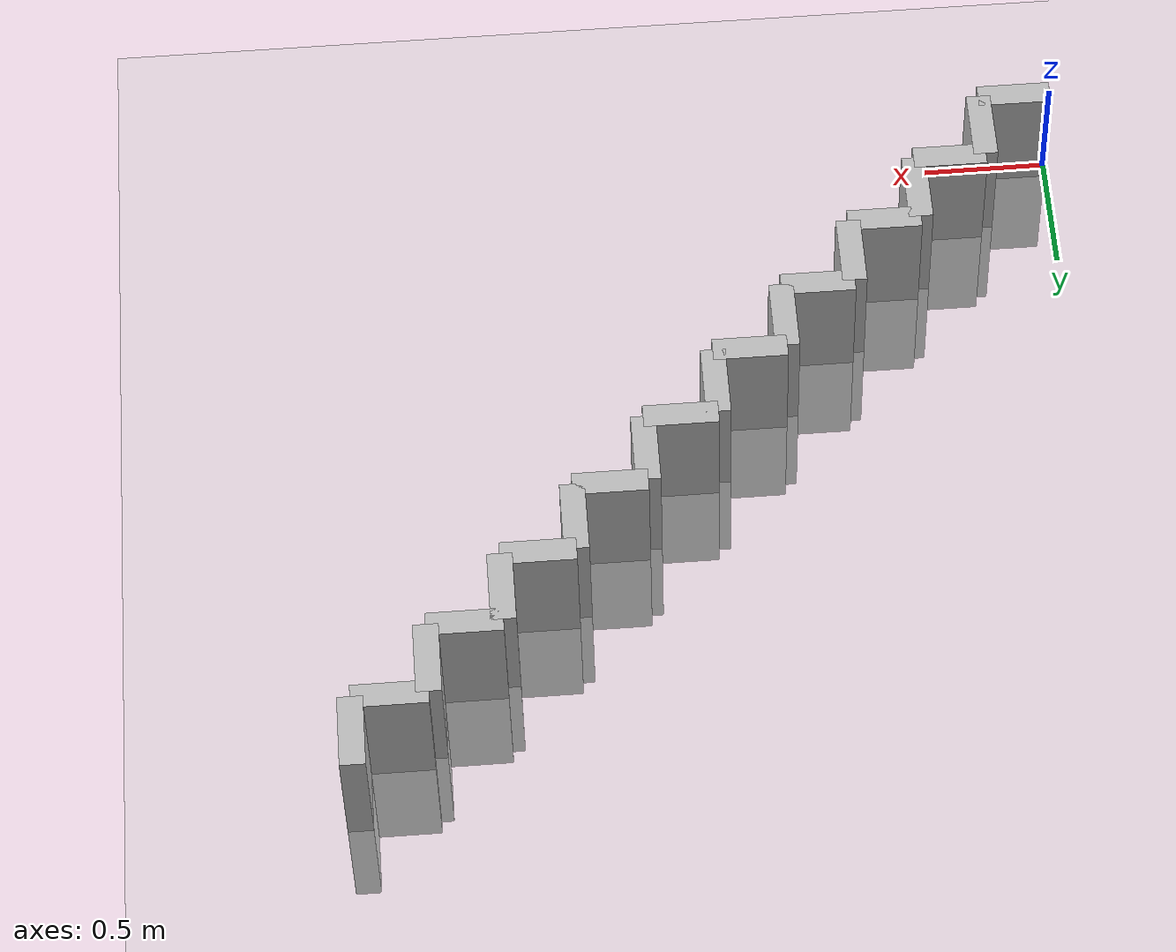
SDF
<?xml version="1.0" ?>
<sdf version="1.6">
  <world name="default">
    <include>
      <uri>model://ground_plane</uri>
    </include>
    <include>
      <uri>model://sun</uri>
    </include>

    <model name="wall_0">
      <static>true</static>
      <link name="link">
        <pose>0.15 0 0 0 0 0</pose>
        <collision name="collision">
          <geometry>
            <box>
              <size>0.3 0.1 1.0</size>
            </box>
          </geometry>
        </collision>
        <visual name="visual">
          <geometry>
            <box>
              <size>0.3 0.1 1.0</size>
            </box>
          </geometry>
        </visual>
      </link>
    </model>

    <model name="wall_1">
      <static>true</static>
      <link name="link">
        <pose>0.3 0.15 0 0 0 1.57</pose>
        <collision name="collision">
          <geometry>
            <box>
              <size>0.3 0.1 1.0</size>
            </box>
          </geometry>
        </collision>
        <visual name="visual">
          <geometry>
            <box>
              <size>0.3 0.1 1.0</size>
            </box>
          </geometry>
        </visual>
      </link>
    </model>

    <model name="wall_2">
      <static>true</static>
      <link name="link">
        <pose>0.44999999999999996 0.3 0 0 0 0</pose>
        <collision name="collision">
          <geometry>
            <box>
              <size>0.3 0.1 1.0</size>
            </box>
          </geometry>
        </collision>
        <visual name="visual">
          <geometry>
            <box>
              <size>0.3 0.1 1.0</size>
            </box>
          </geometry>
        </visual>
      </link>
    </model>

    <model name="wall_3">
      <static>true</static>
      <link name="link">
        <pose>0.6 0.44999999999999996 0 0 0 1.57</pose>
        <collision name="collision">
          <geometry>
            <box>
              <size>0.3 0.1 1.0</size>
            </box>
          </geometry>
        </collision>
        <visual name="visual">
          <geometry>
            <box>
              <size>0.3 0.1 1.0</size>
            </box>
          </geometry>
        </visual>
      </link>
    </model>

    <model name="wall_4">
      <static>true</static>
      <link name="link">
        <pose>0.75 0.6 0 0 0 0</pose>
        <collision name="collision">
          <geometry>
            <box>
              <size>0.3 0.1 1.0</size>
            </box>
          </geometry>
        </collision>
        <visual name="visual">
          <geometry>
            <box>
              <size>0.3 0.1 1.0</size>
            </box>
          </geometry>
        </visual>
      </link>
    </model>

    <model name="wall_5">
      <static>true</static>
      <link name="link">
        <pose>0.9 0.75 0 0 0 1.57</pose>
        <collision name="collision">
          <geometry>
            <box>
              <size>0.3 0.1 1.0</size>
            </box>
          </geometry>
        </collision>
        <visual name="visual">
          <geometry>
            <box>
              <size>0.3 0.1 1.0</size>
            </box>
          </geometry>
        </visual>
      </link>
    </model>

    <model name="wall_6">
      <static>true</static>
      <link name="link">
        <pose>1.05 0.9 0 0 0 0</pose>
        <collision name="collision">
          <geometry>
            <box>
              <size>0.3 0.1 1.0</size>
            </box>
          </geometry>
        </collision>
        <visual name="visual">
          <geometry>
            <box>
              <size>0.3 0.1 1.0</size>
            </box>
          </geometry>
        </visual>
      </link>
    </model>

    <model name="wall_7">
      <static>true</static>
      <link name="link">
        <pose>1.2 1.05 0 0 0 1.57</pose>
        <collision name="collision">
          <geometry>
            <box>
              <size>0.3 0.1 1.0</size>
            </box>
          </geometry>
        </collision>
        <visual name="visual">
          <geometry>
            <box>
              <size>0.3 0.1 1.0</size>
            </box>
          </geometry>
        </visual>
      </link>
    </model>

    <model name="wall_8">
      <static>true</static>
      <link name="link">
        <pose>1.3499999999999999 1.2 0 0 0 0</pose>
        <collision name="collision">
          <geometry>
            <box>
              <size>0.3 0.1 1.0</size>
            </box>
          </geometry>
        </collision>
        <visual name="visual">
          <geometry>
            <box>
              <size>0.3 0.1 1.0</size>
            </box>
          </geometry>
        </visual>
      </link>
    </model>

    <model name="wall_9">
      <static>true</static>
      <link name="link">
        <pose>1.4999999999999998 1.3499999999999999 0 0 0 1.57</pose>
        <collision name="collision">
          <geometry>
            <box>
              <size>0.3 0.1 1.0</size>
            </box>
          </geometry>
        </collision>
        <visual name="visual">
          <geometry>
            <box>
              <size>0.3 0.1 1.0</size>
            </box>
          </geometry>
        </visual>
      </link>
    </model>

    <model name="wall_10">
      <static>true</static>
      <link name="link">
        <pose>1.6499999999999997 1.4999999999999998 0 0 0 0</pose>
        <collision name="collision">
          <geometry>
            <box>
              <size>0.3 0.1 1.0</size>
            </box>
          </geometry>
        </collision>
        <visual name="visual">
          <geometry>
            <box>
              <size>0.3 0.1 1.0</size>
            </box>
          </geometry>
        </visual>
      </link>
    </model>

    <model name="wall_11">
      <static>true</static>
      <link name="link">
        <pose>1.7999999999999996 1.6499999999999997 0 0 0 1.57</pose>
        <collision name="collision">
          <geometry>
            <box>
              <size>0.3 0.1 1.0</size>
            </box>
          </geometry>
        </collision>
        <visual name="visual">
          <geometry>
            <box>
              <size>0.3 0.1 1.0</size>
            </box>
          </geometry>
        </visual>
      </link>
    </model>

    <model name="wall_12">
      <static>true</static>
      <link name="link">
        <pose>1.9499999999999995 1.7999999999999996 0 0 0 0</pose>
        <collision name="collision">
          <geometry>
            <box>
              <size>0.3 0.1 1.0</size>
            </box>
          </geometry>
        </collision>
        <visual name="visual">
          <geometry>
            <box>
              <size>0.3 0.1 1.0</size>
            </box>
          </geometry>
        </visual>
      </link>
    </model>

    <model name="wall_13">
      <static>true</static>
      <link name="link">
        <pose>2.0999999999999996 1.9499999999999995 0 0 0 1.57</pose>
        <collision name="collision">
          <geometry>
            <box>
              <size>0.3 0.1 1.0</size>
            </box>
          </geometry>
        </collision>
        <visual name="visual">
          <geometry>
            <box>
              <size>0.3 0.1 1.0</size>
            </box>
          </geometry>
        </visual>
      </link>
    </model>

    <model name="wall_14">
      <static>true</static>
      <link name="link">
        <pose>2.2499999999999996 2.0999999999999996 0 0 0 0</pose>
        <collision name="collision">
          <geometry>
            <box>
              <size>0.3 0.1 1.0</size>
            </box>
          </geometry>
        </collision>
        <visual name="visual">
          <geometry>
            <box>
              <size>0.3 0.1 1.0</size>
            </box>
          </geometry>
        </visual>
      </link>
    </model>

    <model name="wall_15">
      <static>true</static>
      <link name="link">
        <pose>2.3999999999999995 2.2499999999999996 0 0 0 1.57</pose>
        <collision name="collision">
          <geometry>
            <box>
              <size>0.3 0.1 1.0</size>
            </box>
          </geometry>
        </collision>
        <visual name="visual">
          <geometry>
            <box>
              <size>0.3 0.1 1.0</size>
            </box>
          </geometry>
        </visual>
      </link>
    </model>

    <model name="wall_16">
      <static>true</static>
      <link name="link">
        <pose>2.5499999999999994 2.3999999999999995 0 0 0 0</pose>
        <collision name="collision">
          <geometry>
            <box>
              <size>0.3 0.1 1.0</size>
            </box>
          </geometry>
        </collision>
        <visual name="visual">
          <geometry>
            <box>
              <size>0.3 0.1 1.0</size>
            </box>
          </geometry>
        </visual>
      </link>
    </model>

    <model name="wall_17">
      <static>true</static>
      <link name="link">
        <pose>2.6999999999999993 2.5499999999999994 0 0 0 1.57</pose>
        <collision name="collision">
          <geometry>
            <box>
              <size>0.3 0.1 1.0</size>
            </box>
          </geometry>
        </collision>
        <visual name="visual">
          <geometry>
            <box>
              <size>0.3 0.1 1.0</size>
            </box>
          </geometry>
        </visual>
      </link>
    </model>

    <model name="wall_18">
      <static>true</static>
      <link name="link">
        <pose>2.849999999999999 2.6999999999999993 0 0 0 0</pose>
        <collision name="collision">
          <geometry>
            <box>
              <size>0.3 0.1 1.0</size>
            </box>
          </geometry>
        </collision>
        <visual name="visual">
          <geometry>
            <box>
              <size>0.3 0.1 1.0</size>
            </box>
          </geometry>
        </visual>
      </link>
    </model>

    <model name="wall_19">
      <static>true</static>
      <link name="link">
        <pose>2.999999999999999 2.849999999999999 0 0 0 1.57</pose>
        <collision name="collision">
          <geometry>
            <box>
              <size>0.3 0.1 1.0</size>
            </box>
          </geometry>
        </collision>
        <visual name="visual">
          <geometry>
            <box>
              <size>0.3 0.1 1.0</size>
            </box>
          </geometry>
        </visual>
      </link>
    </model>

  </world>
</sdf>
